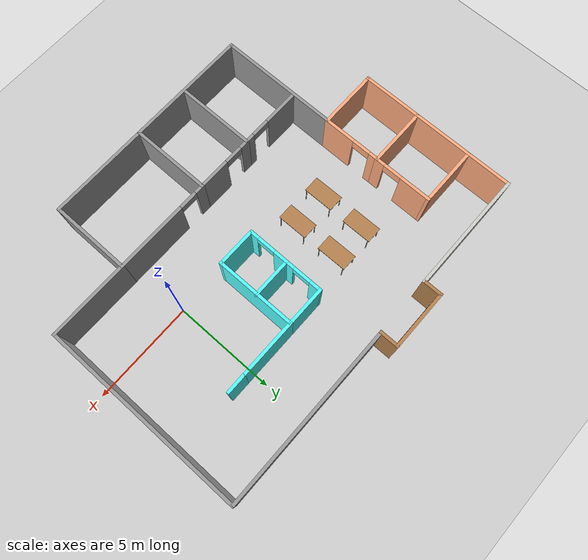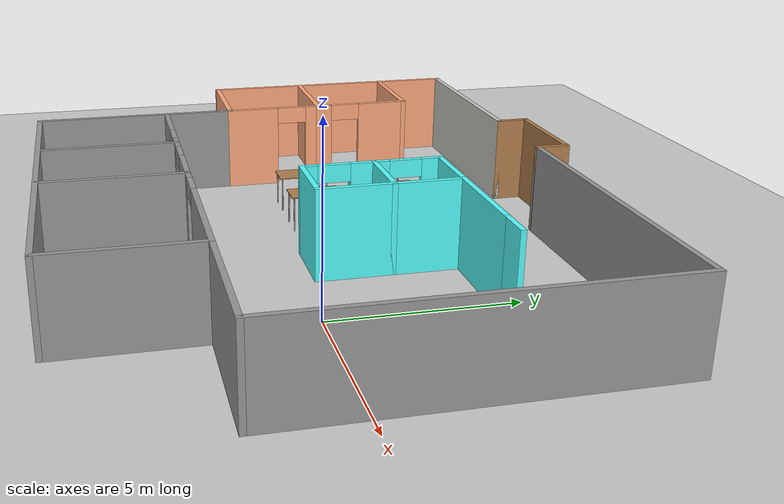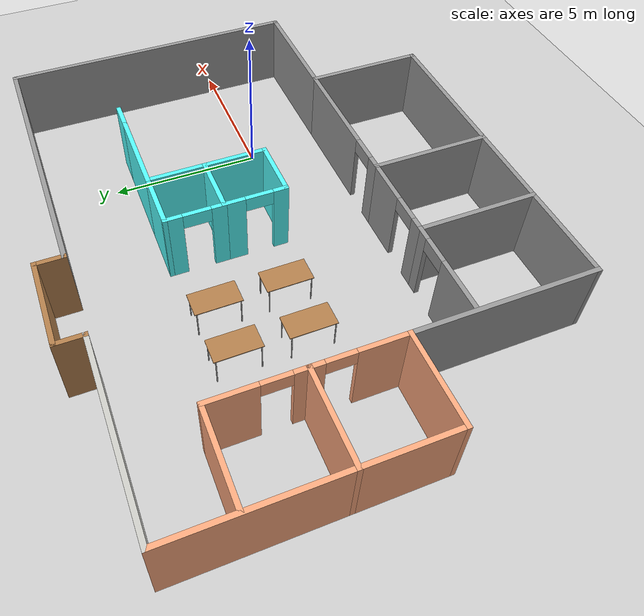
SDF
<sdf version="1.6">
 <world name="default">
  <model name="ground_plane">
   <static>1</static>
   <link name="link">
    <collision name="collision">
     <geometry><plane><normal>0 0 1</normal><size>100 100</size></plane></geometry>
     <surface>
      <contact><collide_bitmask>65535</collide_bitmask></contact>
      <friction><ode><mu>100</mu><mu2>50</mu2></ode></friction>
     </surface>
    </collision>
    <visual name="visual">
     <cast_shadows>0</cast_shadows>
     <geometry><plane><normal>0 0 1</normal><size>100 100</size></plane></geometry>
     <material>
      <script><uri>file://media/materials/scripts/gazebo.material</uri><name>Gazebo/Grey</name></script>
     </material>
    </visual>
   </link>
  </model>
  <model name="building">
   <pose>-4.41923 0.8356 0 0 -0 0</pose>
   <link name="Wall_10">
    <collision name="Wall_10_Collision">
     <geometry><box><size>11 0.15 2.5</size></box></geometry>
     <pose>0 0 1.25 0 -0 0</pose>
    </collision>
    <visual name="Wall_10_Visual">
     <pose>0 0 1.25 0 -0 0</pose>
     <geometry><box><size>11 0.15 2.5</size></box></geometry>
     <material>
      <script><uri>file://media/materials/scripts/gazebo.material</uri><name>Gazebo/Grey</name></script>
      <ambient>1 1 1 1</ambient>
     </material>
     <meta><layer>0</layer></meta>
    </visual>
    <pose>-0.5 -7.275 0 0 -0 3.14159</pose>
   </link>
   <link name="Wall_11">
    <collision name="Wall_11_Collision">
     <geometry><box><size>6 0.15 2.5</size></box></geometry>
     <pose>0 0 1.25 0 -0 0</pose>
    </collision>
    <visual name="Wall_11_Visual">
     <pose>0 0 1.25 0 -0 0</pose>
     <geometry><box><size>6 0.15 2.5</size></box></geometry>
     <material>
      <script><uri>file://media/materials/scripts/gazebo.material</uri><name>Gazebo/Grey</name></script>
      <ambient>1 1 1 1</ambient>
     </material>
     <meta><layer>0</layer></meta>
    </visual>
    <pose>-5.925 -4.35 0 0 -0 1.5708</pose>
   </link>
   <link name="Wall_12">
    <collision name="Wall_12_Collision">
     <geometry><box><size>3 0.15 2.5</size></box></geometry>
     <pose>0 0 1.25 0 -0 0</pose>
    </collision>
    <visual name="Wall_12_Visual">
     <pose>0 0 1.25 0 -0 0</pose>
     <geometry><box><size>3 0.15 2.5</size></box></geometry>
     <material>
      <script><uri>file://media/materials/scripts/gazebo.material</uri><name>Gazebo/Grey</name></script>
      <ambient>1 0.666667 0.498039 1</ambient>
     </material>
     <meta><layer>0</layer></meta>
    </visual>
    <pose>-7.35 -1.425 0 0 -0 3.14159</pose>
   </link>
   <link name="Wall_13">
    <collision name="Wall_13_Collision">
     <geometry><box><size>8 0.15 2.5</size></box></geometry>
     <pose>0 0 1.25 0 -0 0</pose>
    </collision>
    <visual name="Wall_13_Visual">
     <pose>0 0 1.25 0 -0 0</pose>
     <geometry><box><size>8 0.15 2.5</size></box></geometry>
     <material>
      <script><uri>file://media/materials/scripts/gazebo.material</uri><name>Gazebo/Grey</name></script>
      <ambient>1 0.666667 0.498039 1</ambient>
     </material>
     <meta><layer>0</layer></meta>
    </visual>
    <pose>-8.775 2.5 0 0 -0 1.5708</pose>
   </link>
   <link name="Wall_15">
    <pose>-5.925 0 0 0 -0 1.5708</pose>
    <visual name="Wall_15_Visual_0">
     <pose>-0.699732 0 1.25 0 -0 0</pose>
     <geometry><box><size>1.60054 0.15 2.5</size></box></geometry>
     <material>
      <script><uri>file://media/materials/scripts/gazebo.material</uri><name>Gazebo/Grey</name></script>
      <ambient>1 0.666667 0.498039 1</ambient>
     </material>
     <meta><layer>0</layer></meta>
    </visual>
    <collision name="Wall_15_Collision_0">
     <geometry><box><size>1.60054 0.15 2.5</size></box></geometry>
     <pose>-0.699732 0 1.25 0 -0 0</pose>
    </collision>
    <visual name="Wall_15_Visual_1">
     <pose>1.25027 0 1.25 0 -0 0</pose>
     <geometry><box><size>0.499463 0.15 2.5</size></box></geometry>
     <material>
      <script><uri>file://media/materials/scripts/gazebo.material</uri><name>Gazebo/Grey</name></script>
      <ambient>1 0.666667 0.498039 1</ambient>
     </material>
     <meta><layer>0</layer></meta>
    </visual>
    <collision name="Wall_15_Collision_1">
     <geometry><box><size>0.499463 0.15 2.5</size></box></geometry>
     <pose>1.25027 0 1.25 0 -0 0</pose>
    </collision>
    <visual name="Wall_15_Visual_2">
     <pose>0.550537 0 2.25 0 -0 0</pose>
     <geometry><box><size>0.9 0.15 0.5</size></box></geometry>
     <material>
      <script><uri>file://media/materials/scripts/gazebo.material</uri><name>Gazebo/Grey</name></script>
      <ambient>1 0.666667 0.498039 1</ambient>
     </material>
     <meta><layer>0</layer></meta>
    </visual>
    <collision name="Wall_15_Collision_2">
     <geometry><box><size>0.9 0.15 0.5</size></box></geometry>
     <pose>0.550537 0 2.25 0 -0 0</pose>
    </collision>
   </link>
   <link name="Wall_16">
    <collision name="Wall_16_Collision">
     <geometry><box><size>3 0.15 2.5</size></box></geometry>
     <pose>0 0 1.25 0 -0 0</pose>
    </collision>
    <visual name="Wall_16_Visual">
     <pose>0 0 1.25 0 -0 0</pose>
     <geometry><box><size>3 0.15 2.5</size></box></geometry>
     <material>
      <script><uri>file://media/materials/scripts/gazebo.material</uri><name>Gazebo/Grey</name></script>
      <ambient>1 0.666667 0.498039 1</ambient>
     </material>
     <meta><layer>0</layer></meta>
    </visual>
    <pose>-7.35 1.425 0 0 -0 3.14159</pose>
   </link>
   <link name="Wall_18">
    <pose>-5.925 2.85 0 0 -0 1.5708</pose>
    <visual name="Wall_18_Visual_0">
     <pose>-1.24482 0 1.25 0 -0 0</pose>
     <geometry><box><size>0.510355 0.15 2.5</size></box></geometry>
     <material>
      <script><uri>file://media/materials/scripts/gazebo.material</uri><name>Gazebo/Grey</name></script>
      <ambient>1 0.666667 0.498039 1</ambient>
     </material>
     <meta><layer>0</layer></meta>
    </visual>
    <collision name="Wall_18_Collision_0">
     <geometry><box><size>0.510355 0.15 2.5</size></box></geometry>
     <pose>-1.24482 0 1.25 0 -0 0</pose>
    </collision>
    <visual name="Wall_18_Visual_1">
     <pose>0.705177 0 1.25 0 -0 0</pose>
     <geometry><box><size>1.58964 0.15 2.5</size></box></geometry>
     <material>
      <script><uri>file://media/materials/scripts/gazebo.material</uri><name>Gazebo/Grey</name></script>
      <ambient>1 0.666667 0.498039 1</ambient>
     </material>
     <meta><layer>0</layer></meta>
    </visual>
    <collision name="Wall_18_Collision_1">
     <geometry><box><size>1.58964 0.15 2.5</size></box></geometry>
     <pose>0.705177 0 1.25 0 -0 0</pose>
    </collision>
    <visual name="Wall_18_Visual_2">
     <pose>-0.539645 0 2.25 0 -0 0</pose>
     <geometry><box><size>0.9 0.15 0.5</size></box></geometry>
     <material>
      <script><uri>file://media/materials/scripts/gazebo.material</uri><name>Gazebo/Grey</name></script>
      <ambient>1 0.666667 0.498039 1</ambient>
     </material>
     <meta><layer>0</layer></meta>
    </visual>
    <collision name="Wall_18_Collision_2">
     <geometry><box><size>0.9 0.15 0.5</size></box></geometry>
     <pose>-0.539645 0 2.25 0 -0 0</pose>
    </collision>
   </link>
   <link name="Wall_19">
    <collision name="Wall_19_Collision">
     <geometry><box><size>3 0.15 2.5</size></box></geometry>
     <pose>0 0 1.25 0 -0 0</pose>
    </collision>
    <visual name="Wall_19_Visual">
     <pose>0 0 1.25 0 -0 0</pose>
     <geometry><box><size>3 0.15 2.5</size></box></geometry>
     <material>
      <script><uri>file://media/materials/scripts/gazebo.material</uri><name>Gazebo/Grey</name></script>
      <ambient>1 0.666667 0.498039 1</ambient>
     </material>
     <meta><layer>0</layer></meta>
    </visual>
    <pose>-7.35 4.275 0 0 -0 3.14159</pose>
   </link>
   <link name="Wall_2">
    <collision name="Wall_2_Collision">
     <geometry><box><size>6 0.15 2.5</size></box></geometry>
     <pose>0 0 1.25 0 -0 0</pose>
    </collision>
    <visual name="Wall_2_Visual">
     <pose>0 0 1.25 0 -0 0</pose>
     <geometry><box><size>6 0.15 2.5</size></box></geometry>
     <material>
      <script><uri>file://media/materials/scripts/gazebo.material</uri><name>Gazebo/CeilingTiled</name></script>
      <ambient>1 1 1 1</ambient>
     </material>
     <meta><layer>0</layer></meta>
    </visual>
    <pose>-5.85 6.425 0 0 -0 0</pose>
   </link>
   <link name="Wall_21">
    <pose>2.5 -3.425 0 0 -0 3.14159</pose>
    <visual name="Wall_21_Visual_0">
     <pose>-0.701525 0 1.25 0 -0 0</pose>
     <geometry><box><size>3.59695 0.15 2.5</size></box></geometry>
     <material>
      <script><uri>file://media/materials/scripts/gazebo.material</uri><name>Gazebo/Grey</name></script>
      <ambient>1 1 1 1</ambient>
     </material>
     <meta><layer>0</layer></meta>
    </visual>
    <collision name="Wall_21_Collision_0">
     <geometry><box><size>3.59695 0.15 2.5</size></box></geometry>
     <pose>-0.701525 0 1.25 0 -0 0</pose>
    </collision>
    <visual name="Wall_21_Visual_1">
     <pose>2.24848 0 1.25 0 -0 0</pose>
     <geometry><box><size>0.50305 0.15 2.5</size></box></geometry>
     <material>
      <script><uri>file://media/materials/scripts/gazebo.material</uri><name>Gazebo/Grey</name></script>
      <ambient>1 1 1 1</ambient>
     </material>
     <meta><layer>0</layer></meta>
    </visual>
    <collision name="Wall_21_Collision_1">
     <geometry><box><size>0.50305 0.15 2.5</size></box></geometry>
     <pose>2.24848 0 1.25 0 -0 0</pose>
    </collision>
    <visual name="Wall_21_Visual_2">
     <pose>1.54695 0 2.25 0 -0 0</pose>
     <geometry><box><size>0.9 0.15 0.5</size></box></geometry>
     <material>
      <script><uri>file://media/materials/scripts/gazebo.material</uri><name>Gazebo/Grey</name></script>
      <ambient>1 1 1 1</ambient>
     </material>
     <meta><layer>0</layer></meta>
    </visual>
    <collision name="Wall_21_Collision_2">
     <geometry><box><size>0.9 0.15 0.5</size></box></geometry>
     <pose>1.54695 0 2.25 0 -0 0</pose>
    </collision>
   </link>
   <link name="Wall_22">
    <collision name="Wall_22_Collision">
     <geometry><box><size>4 0.15 2.5</size></box></geometry>
     <pose>0 0 1.25 0 -0 0</pose>
    </collision>
    <visual name="Wall_22_Visual">
     <pose>0 0 1.25 0 -0 0</pose>
     <geometry><box><size>4 0.15 2.5</size></box></geometry>
     <material>
      <script><uri>file://media/materials/scripts/gazebo.material</uri><name>Gazebo/Grey</name></script>
      <ambient>1 1 1 1</ambient>
     </material>
     <meta><layer>0</layer></meta>
    </visual>
    <pose>0.075 -5.35 0 0 0 -1.5708</pose>
   </link>
   <link name="Wall_24">
    <pose>-1.35 -3.425 0 0 -0 3.14159</pose>
    <visual name="Wall_24_Visual_0">
     <pose>-0.700436 0 1.25 0 -0 0</pose>
     <geometry><box><size>1.59913 0.15 2.5</size></box></geometry>
     <material>
      <script><uri>file://media/materials/scripts/gazebo.material</uri><name>Gazebo/Grey</name></script>
      <ambient>1 1 1 1</ambient>
     </material>
     <meta><layer>0</layer></meta>
    </visual>
    <collision name="Wall_24_Collision_0">
     <geometry><box><size>1.59913 0.15 2.5</size></box></geometry>
     <pose>-0.700436 0 1.25 0 -0 0</pose>
    </collision>
    <visual name="Wall_24_Visual_1">
     <pose>1.24956 0 1.25 0 -0 0</pose>
     <geometry><box><size>0.500873 0.15 2.5</size></box></geometry>
     <material>
      <script><uri>file://media/materials/scripts/gazebo.material</uri><name>Gazebo/Grey</name></script>
      <ambient>1 1 1 1</ambient>
     </material>
     <meta><layer>0</layer></meta>
    </visual>
    <collision name="Wall_24_Collision_1">
     <geometry><box><size>0.500873 0.15 2.5</size></box></geometry>
     <pose>1.24956 0 1.25 0 -0 0</pose>
    </collision>
    <visual name="Wall_24_Visual_2">
     <pose>0.549127 0 2.25 0 -0 0</pose>
     <geometry><box><size>0.9 0.15 0.5</size></box></geometry>
     <material>
      <script><uri>file://media/materials/scripts/gazebo.material</uri><name>Gazebo/Grey</name></script>
      <ambient>1 1 1 1</ambient>
     </material>
     <meta><layer>0</layer></meta>
    </visual>
    <collision name="Wall_24_Collision_2">
     <geometry><box><size>0.9 0.15 0.5</size></box></geometry>
     <pose>0.549127 0 2.25 0 -0 0</pose>
    </collision>
   </link>
   <link name="Wall_25">
    <collision name="Wall_25_Collision">
     <geometry><box><size>4 0.15 2.5</size></box></geometry>
     <pose>0 0 1.25 0 -0 0</pose>
    </collision>
    <visual name="Wall_25_Visual">
     <pose>0 0 1.25 0 -0 0</pose>
     <geometry><box><size>4 0.15 2.5</size></box></geometry>
     <material>
      <script><uri>file://media/materials/scripts/gazebo.material</uri><name>Gazebo/Grey</name></script>
      <ambient>1 1 1 1</ambient>
     </material>
     <meta><layer>0</layer></meta>
    </visual>
    <pose>-2.775 -5.35 0 0 0 -1.5708</pose>
   </link>
   <link name="Wall_27">
    <pose>-4.325 -3.425 0 0 -0 3.14159</pose>
    <visual name="Wall_27_Visual_0">
     <pose>-1.37053 0 1.25 0 -0 0</pose>
     <geometry><box><size>0.508945 0.15 2.5</size></box></geometry>
     <material>
      <script><uri>file://media/materials/scripts/gazebo.material</uri><name>Gazebo/Grey</name></script>
      <ambient>1 1 1 1</ambient>
     </material>
     <meta><layer>0</layer></meta>
    </visual>
    <collision name="Wall_27_Collision_0">
     <geometry><box><size>0.508945 0.15 2.5</size></box></geometry>
     <pose>-1.37053 0 1.25 0 -0 0</pose>
    </collision>
    <visual name="Wall_27_Visual_1">
     <pose>0.704472 0 1.25 0 -0 0</pose>
     <geometry><box><size>1.84106 0.15 2.5</size></box></geometry>
     <material>
      <script><uri>file://media/materials/scripts/gazebo.material</uri><name>Gazebo/Grey</name></script>
      <ambient>1 1 1 1</ambient>
     </material>
     <meta><layer>0</layer></meta>
    </visual>
    <collision name="Wall_27_Collision_1">
     <geometry><box><size>1.84106 0.15 2.5</size></box></geometry>
     <pose>0.704472 0 1.25 0 -0 0</pose>
    </collision>
    <visual name="Wall_27_Visual_2">
     <pose>-0.666055 0 2.25 0 -0 0</pose>
     <geometry><box><size>0.9 0.15 0.5</size></box></geometry>
     <material>
      <script><uri>file://media/materials/scripts/gazebo.material</uri><name>Gazebo/Grey</name></script>
      <ambient>1 1 1 1</ambient>
     </material>
     <meta><layer>0</layer></meta>
    </visual>
    <collision name="Wall_27_Collision_2">
     <geometry><box><size>0.9 0.15 0.5</size></box></geometry>
     <pose>-0.666055 0 2.25 0 -0 0</pose>
    </collision>
   </link>
   <link name="Wall_3">
    <collision name="Wall_3_Collision">
     <geometry><box><size>1 0.15 2.5</size></box></geometry>
     <pose>0 0 1.25 0 -0 0</pose>
    </collision>
    <visual name="Wall_3_Visual">
     <pose>0 0 1.25 0 -0 0</pose>
     <geometry><box><size>1 0.15 2.5</size></box></geometry>
     <material>
      <script><uri>file://media/materials/scripts/gazebo.material</uri><name>Gazebo/Wood</name></script>
      <ambient>1 1 1 1</ambient>
     </material>
     <meta><layer>0</layer></meta>
    </visual>
    <pose>-2.925 6.85 0 0 -0 1.5708</pose>
   </link>
   <link name="Wall_30">
    <collision name="Wall_30_Collision">
     <geometry><box><size>1 0.15 2.5</size></box></geometry>
     <pose>0 0 1.25 0 -0 0</pose>
    </collision>
    <visual name="Wall_30_Visual">
     <pose>0 0 1.25 0 -0 0</pose>
     <geometry><box><size>1 0.15 2.5</size></box></geometry>
     <material>
      <script><uri>file://media/materials/scripts/gazebo.material</uri><name>Gazebo/Grey</name></script>
      <ambient>0.333333 1 1 1</ambient>
     </material>
     <meta><layer>0</layer></meta>
    </visual>
    <pose>5.35 3.425 0 0 -0 0</pose>
   </link>
   <link name="Wall_32">
    <collision name="Wall_32_Collision">
     <geometry><box><size>3 0.15 2.5</size></box></geometry>
     <pose>0 0 1.25 0 -0 0</pose>
    </collision>
    <visual name="Wall_32_Visual">
     <pose>0 0 1.25 0 -0 0</pose>
     <geometry><box><size>3 0.15 2.5</size></box></geometry>
     <material>
      <script><uri>file://media/materials/scripts/gazebo.material</uri><name>Gazebo/Grey</name></script>
      <ambient>0.333333 1 1 1</ambient>
     </material>
     <meta><layer>0</layer></meta>
    </visual>
    <pose>3.5 3.425 0 0 -0 3.14159</pose>
   </link>
   <link name="Wall_34">
    <collision name="Wall_34_Collision">
     <geometry><box><size>4 0.15 2.5</size></box></geometry>
     <pose>0 0 1.25 0 -0 0</pose>
    </collision>
    <visual name="Wall_34_Visual">
     <pose>0 0 1.25 0 -0 0</pose>
     <geometry><box><size>4 0.15 2.5</size></box></geometry>
     <material>
      <script><uri>file://media/materials/scripts/gazebo.material</uri><name>Gazebo/Grey</name></script>
      <ambient>0.333333 1 1 1</ambient>
     </material>
     <meta><layer>0</layer></meta>
    </visual>
    <pose>2.075 1.5 0 0 0 -1.5708</pose>
   </link>
   <link name="Wall_35">
    <collision name="Wall_35_Collision">
     <geometry><box><size>2 0.15 2.5</size></box></geometry>
     <pose>0 0 1.25 0 -0 0</pose>
    </collision>
    <visual name="Wall_35_Visual">
     <pose>0 0 1.25 0 -0 0</pose>
     <geometry><box><size>2 0.15 2.5</size></box></geometry>
     <material>
      <script><uri>file://media/materials/scripts/gazebo.material</uri><name>Gazebo/Grey</name></script>
      <ambient>0.333333 1 1 1</ambient>
     </material>
     <meta><layer>0</layer></meta>
    </visual>
    <pose>1.15 -0.425 0 0 -0 3.14159</pose>
   </link>
   <link name="Wall_37">
    <collision name="Wall_37_Collision">
     <geometry><box><size>2 0.15 2.5</size></box></geometry>
     <pose>0 0 1.25 0 -0 0</pose>
    </collision>
    <visual name="Wall_37_Visual">
     <pose>0 0 1.25 0 -0 0</pose>
     <geometry><box><size>2 0.15 2.5</size></box></geometry>
     <material>
      <script><uri>file://media/materials/scripts/gazebo.material</uri><name>Gazebo/Grey</name></script>
      <ambient>0.333333 1 1 1</ambient>
     </material>
     <meta><layer>0</layer></meta>
    </visual>
    <pose>1.15 3.425 0 0 -0 0</pose>
   </link>
   <link name="Wall_39">
    <pose>0.225 2.5 0 0 0 -1.5708</pose>
    <visual name="Wall_39_Visual_0">
     <pose>-0.69061 0 1.25 0 -0 0</pose>
     <geometry><box><size>0.61878 0.15 2.5</size></box></geometry>
     <material>
      <script><uri>file://media/materials/scripts/gazebo.material</uri><name>Gazebo/Grey</name></script>
      <ambient>0.333333 1 1 1</ambient>
     </material>
     <meta><layer>0</layer></meta>
    </visual>
    <collision name="Wall_39_Collision_0">
     <geometry><box><size>0.61878 0.15 2.5</size></box></geometry>
     <pose>-0.69061 0 1.25 0 -0 0</pose>
    </collision>
    <visual name="Wall_39_Visual_1">
     <pose>0.75939 0 1.25 0 -0 0</pose>
     <geometry><box><size>0.48122 0.15 2.5</size></box></geometry>
     <material>
      <script><uri>file://media/materials/scripts/gazebo.material</uri><name>Gazebo/Grey</name></script>
      <ambient>0.333333 1 1 1</ambient>
     </material>
     <meta><layer>0</layer></meta>
    </visual>
    <collision name="Wall_39_Collision_1">
     <geometry><box><size>0.48122 0.15 2.5</size></box></geometry>
     <pose>0.75939 0 1.25 0 -0 0</pose>
    </collision>
    <visual name="Wall_39_Visual_2">
     <pose>0.06878 0 2.25 0 -0 0</pose>
     <geometry><box><size>0.9 0.15 0.5</size></box></geometry>
     <material>
      <script><uri>file://media/materials/scripts/gazebo.material</uri><name>Gazebo/Grey</name></script>
      <ambient>0.333333 1 1 1</ambient>
     </material>
     <meta><layer>0</layer></meta>
    </visual>
    <collision name="Wall_39_Collision_2">
     <geometry><box><size>0.9 0.15 0.5</size></box></geometry>
     <pose>0.06878 0 2.25 0 -0 0</pose>
    </collision>
   </link>
   <link name="Wall_4">
    <collision name="Wall_4_Collision">
     <geometry><box><size>3 0.15 2.5</size></box></geometry>
     <pose>0 0 1.25 0 -0 0</pose>
    </collision>
    <visual name="Wall_4_Visual">
     <pose>0 0 1.25 0 -0 0</pose>
     <geometry><box><size>3 0.15 2.5</size></box></geometry>
     <material>
      <script><uri>file://media/materials/scripts/gazebo.material</uri><name>Gazebo/Wood</name></script>
      <ambient>1 1 1 1</ambient>
     </material>
     <meta><layer>0</layer></meta>
    </visual>
    <pose>-1.5 7.275 0 0 -0 0</pose>
   </link>
   <link name="Wall_40">
    <collision name="Wall_40_Collision">
     <geometry><box><size>2 0.15 2.5</size></box></geometry>
     <pose>0 0 1.25 0 -0 0</pose>
    </collision>
    <visual name="Wall_40_Visual">
     <pose>0 0 1.25 0 -0 0</pose>
     <geometry><box><size>2 0.15 2.5</size></box></geometry>
     <material>
      <script><uri>file://media/materials/scripts/gazebo.material</uri><name>Gazebo/Grey</name></script>
      <ambient>0.333333 1 1 1</ambient>
     </material>
     <meta><layer>0</layer></meta>
    </visual>
    <pose>1.15 1.575 0 0 -0 0</pose>
   </link>
   <link name="Wall_42">
    <pose>0.225 0.575 0 0 0 -1.5708</pose>
    <visual name="Wall_42_Visual_0">
     <pose>-0.699448 0 1.25 0 -0 0</pose>
     <geometry><box><size>0.751103 0.15 2.5</size></box></geometry>
     <material>
      <script><uri>file://media/materials/scripts/gazebo.material</uri><name>Gazebo/Grey</name></script>
      <ambient>0.333333 1 1 1</ambient>
     </material>
     <meta><layer>0</layer></meta>
    </visual>
    <collision name="Wall_42_Collision_0">
     <geometry><box><size>0.751103 0.15 2.5</size></box></geometry>
     <pose>-0.699448 0 1.25 0 -0 0</pose>
    </collision>
    <visual name="Wall_42_Visual_1">
     <pose>0.825552 0 1.25 0 -0 0</pose>
     <geometry><box><size>0.498897 0.15 2.5</size></box></geometry>
     <material>
      <script><uri>file://media/materials/scripts/gazebo.material</uri><name>Gazebo/Grey</name></script>
      <ambient>0.333333 1 1 1</ambient>
     </material>
     <meta><layer>0</layer></meta>
    </visual>
    <collision name="Wall_42_Collision_1">
     <geometry><box><size>0.498897 0.15 2.5</size></box></geometry>
     <pose>0.825552 0 1.25 0 -0 0</pose>
    </collision>
    <visual name="Wall_42_Visual_2">
     <pose>0.126103 0 2.25 0 -0 0</pose>
     <geometry><box><size>0.9 0.15 0.5</size></box></geometry>
     <material>
      <script><uri>file://media/materials/scripts/gazebo.material</uri><name>Gazebo/Grey</name></script>
      <ambient>0.333333 1 1 1</ambient>
     </material>
     <meta><layer>0</layer></meta>
    </visual>
    <collision name="Wall_42_Collision_2">
     <geometry><box><size>0.9 0.15 0.5</size></box></geometry>
     <pose>0.126103 0 2.25 0 -0 0</pose>
    </collision>
   </link>
   <link name="Wall_5">
    <collision name="Wall_5_Collision">
     <geometry><box><size>1 0.15 2.5</size></box></geometry>
     <pose>0 0 1.25 0 -0 0</pose>
    </collision>
    <visual name="Wall_5_Visual">
     <pose>0 0 1.25 0 -0 0</pose>
     <geometry><box><size>1 0.15 2.5</size></box></geometry>
     <material>
      <script><uri>file://media/materials/scripts/gazebo.material</uri><name>Gazebo/Wood</name></script>
      <ambient>1 1 1 1</ambient>
     </material>
     <meta><layer>0</layer></meta>
    </visual>
    <pose>-0.075 6.85 0 0 0 -1.5708</pose>
   </link>
   <link name="Wall_6">
    <collision name="Wall_6_Collision">
     <geometry><box><size>9 0.15 2.5</size></box></geometry>
     <pose>0 0 1.25 0 -0 0</pose>
    </collision>
    <visual name="Wall_6_Visual">
     <pose>0 0 1.25 0 -0 0</pose>
     <geometry><box><size>9 0.15 2.5</size></box></geometry>
     <material>
      <script><uri>file://media/materials/scripts/gazebo.material</uri><name>Gazebo/Grey</name></script>
      <ambient>1 1 1 1</ambient>
     </material>
     <meta><layer>0</layer></meta>
    </visual>
    <pose>4.35 6.425 0 0 -0 0</pose>
   </link>
   <link name="Wall_7">
    <collision name="Wall_7_Collision">
     <geometry><box><size>10 0.15 2.5</size></box></geometry>
     <pose>0 0 1.25 0 -0 0</pose>
    </collision>
    <visual name="Wall_7_Visual">
     <pose>0 0 1.25 0 -0 0</pose>
     <geometry><box><size>10 0.15 2.5</size></box></geometry>
     <material>
      <script><uri>file://media/materials/scripts/gazebo.material</uri><name>Gazebo/Grey</name></script>
      <ambient>1 1 1 1</ambient>
     </material>
     <meta><layer>0</layer></meta>
    </visual>
    <pose>8.775 1.5 0 0 0 -1.5708</pose>
   </link>
   <link name="Wall_8">
    <collision name="Wall_8_Collision">
     <geometry><box><size>4 0.15 2.5</size></box></geometry>
     <pose>0 0 1.25 0 -0 0</pose>
    </collision>
    <visual name="Wall_8_Visual">
     <pose>0 0 1.25 0 -0 0</pose>
     <geometry><box><size>4 0.15 2.5</size></box></geometry>
     <material>
      <script><uri>file://media/materials/scripts/gazebo.material</uri><name>Gazebo/Grey</name></script>
      <ambient>1 1 1 1</ambient>
     </material>
     <meta><layer>0</layer></meta>
    </visual>
    <pose>6.85 -3.425 0 0 -0 3.14159</pose>
   </link>
   <link name="Wall_9">
    <collision name="Wall_9_Collision">
     <geometry><box><size>4 0.15 2.5</size></box></geometry>
     <pose>0 0 1.25 0 -0 0</pose>
    </collision>
    <visual name="Wall_9_Visual">
     <pose>0 0 1.25 0 -0 0</pose>
     <geometry><box><size>4 0.15 2.5</size></box></geometry>
     <material>
      <script><uri>file://media/materials/scripts/gazebo.material</uri><name>Gazebo/Grey</name></script>
      <ambient>1 1 1 1</ambient>
     </material>
     <meta><layer>0</layer></meta>
    </visual>
    <pose>4.925 -5.35 0 0 0 -1.5708</pose>
   </link>
   <static>1</static>
  </model>
  <model name="table">
   <static>1</static>
   <link name="link">
    <collision name="surface">
     <pose>0 0 1 0 -0 0</pose>
     <geometry><box><size>1.5 0.8 0.03</size></box></geometry>
     <surface><friction><ode><mu>0.6</mu><mu2>0.6</mu2></ode></friction></surface>
    </collision>
    <visual name="visual1">
     <pose>0 0 1 0 -0 0</pose>
     <geometry><box><size>1.5 0.8 0.03</size></box></geometry>
     <material>
      <script><uri>file://media/materials/scripts/gazebo.material</uri><name>Gazebo/Wood</name></script>
     </material>
    </visual>
    <collision name="front_left_leg">
     <pose>0.68 0.38 0.5 0 -0 0</pose>
     <geometry><cylinder><radius>0.02</radius><length>1</length></cylinder></geometry>
    </collision>
    <visual name="front_left_leg">
     <pose>0.68 0.38 0.5 0 -0 0</pose>
     <geometry><cylinder><radius>0.02</radius><length>1</length></cylinder></geometry>
     <material>
      <script><uri>file://media/materials/scripts/gazebo.material</uri><name>Gazebo/Grey</name></script>
     </material>
    </visual>
    <collision name="front_right_leg">
     <pose>0.68 -0.38 0.5 0 -0 0</pose>
     <geometry><cylinder><radius>0.02</radius><length>1</length></cylinder></geometry>
    </collision>
    <visual name="front_right_leg">
     <pose>0.68 -0.38 0.5 0 -0 0</pose>
     <geometry><cylinder><radius>0.02</radius><length>1</length></cylinder></geometry>
     <material>
      <script><uri>file://media/materials/scripts/gazebo.material</uri><name>Gazebo/Grey</name></script>
     </material>
    </visual>
    <collision name="back_right_leg">
     <pose>-0.68 -0.38 0.5 0 -0 0</pose>
     <geometry><cylinder><radius>0.02</radius><length>1</length></cylinder></geometry>
    </collision>
    <visual name="back_right_leg">
     <pose>-0.68 -0.38 0.5 0 -0 0</pose>
     <geometry><cylinder><radius>0.02</radius><length>1</length></cylinder></geometry>
     <material>
      <script><uri>file://media/materials/scripts/gazebo.material</uri><name>Gazebo/Grey</name></script>
     </material>
    </visual>
    <collision name="back_left_leg">
     <pose>-0.68 0.38 0.5 0 -0 0</pose>
     <geometry><cylinder><radius>0.02</radius><length>1</length></cylinder></geometry>
    </collision>
    <visual name="back_left_leg">
     <pose>-0.68 0.38 0.5 0 -0 0</pose>
     <geometry><cylinder><radius>0.02</radius><length>1</length></cylinder></geometry>
     <material>
      <script><uri>file://media/materials/scripts/gazebo.material</uri><name>Gazebo/Grey</name></script>
     </material>
    </visual>
   </link>
   <pose>-6.31911 3.49163 0 0 0 -1.56537</pose>
  </model>
  <model name="table_clone">
   <static>1</static>
   <link name="link">
    <collision name="surface">
     <pose>0 0 1 0 -0 0</pose>
     <geometry><box><size>1.5 0.8 0.03</size></box></geometry>
     <surface><friction><ode><mu>0.6</mu><mu2>0.6</mu2></ode></friction></surface>
    </collision>
    <visual name="visual1">
     <pose>0 0 1 0 -0 0</pose>
     <geometry><box><size>1.5 0.8 0.03</size></box></geometry>
     <material>
      <script><uri>file://media/materials/scripts/gazebo.material</uri><name>Gazebo/Wood</name></script>
     </material>
    </visual>
    <collision name="front_left_leg">
     <pose>0.68 0.38 0.5 0 -0 0</pose>
     <geometry><cylinder><radius>0.02</radius><length>1</length></cylinder></geometry>
    </collision>
    <visual name="front_left_leg">
     <pose>0.68 0.38 0.5 0 -0 0</pose>
     <geometry><cylinder><radius>0.02</radius><length>1</length></cylinder></geometry>
     <material>
      <script><uri>file://media/materials/scripts/gazebo.material</uri><name>Gazebo/Grey</name></script>
     </material>
    </visual>
    <collision name="front_right_leg">
     <pose>0.68 -0.38 0.5 0 -0 0</pose>
     <geometry><cylinder><radius>0.02</radius><length>1</length></cylinder></geometry>
    </collision>
    <visual name="front_right_leg">
     <pose>0.68 -0.38 0.5 0 -0 0</pose>
     <geometry><cylinder><radius>0.02</radius><length>1</length></cylinder></geometry>
     <material>
      <script><uri>file://media/materials/scripts/gazebo.material</uri><name>Gazebo/Grey</name></script>
     </material>
    </visual>
    <collision name="back_right_leg">
     <pose>-0.68 -0.38 0.5 0 -0 0</pose>
     <geometry><cylinder><radius>0.02</radius><length>1</length></cylinder></geometry>
    </collision>
    <visual name="back_right_leg">
     <pose>-0.68 -0.38 0.5 0 -0 0</pose>
     <geometry><cylinder><radius>0.02</radius><length>1</length></cylinder></geometry>
     <material>
      <script><uri>file://media/materials/scripts/gazebo.material</uri><name>Gazebo/Grey</name></script>
     </material>
    </visual>
    <collision name="back_left_leg">
     <pose>-0.68 0.38 0.5 0 -0 0</pose>
     <geometry><cylinder><radius>0.02</radius><length>1</length></cylinder></geometry>
    </collision>
    <visual name="back_left_leg">
     <pose>-0.68 0.38 0.5 0 -0 0</pose>
     <geometry><cylinder><radius>0.02</radius><length>1</length></cylinder></geometry>
     <material>
      <script><uri>file://media/materials/scripts/gazebo.material</uri><name>Gazebo/Grey</name></script>
     </material>
    </visual>
   </link>
   <pose>-6.29166 1.23928 0 0 0 -1.56537</pose>
  </model>
  <model name="table_clone_0">
   <static>1</static>
   <link name="link">
    <collision name="surface">
     <pose>0 0 1 0 -0 0</pose>
     <geometry><box><size>1.5 0.8 0.03</size></box></geometry>
     <surface><friction><ode><mu>0.6</mu><mu2>0.6</mu2></ode></friction></surface>
    </collision>
    <visual name="visual1">
     <pose>0 0 1 0 -0 0</pose>
     <geometry><box><size>1.5 0.8 0.03</size></box></geometry>
     <material>
      <script><uri>file://media/materials/scripts/gazebo.material</uri><name>Gazebo/Wood</name></script>
     </material>
    </visual>
    <collision name="front_left_leg">
     <pose>0.68 0.38 0.5 0 -0 0</pose>
     <geometry><cylinder><radius>0.02</radius><length>1</length></cylinder></geometry>
    </collision>
    <visual name="front_left_leg">
     <pose>0.68 0.38 0.5 0 -0 0</pose>
     <geometry><cylinder><radius>0.02</radius><length>1</length></cylinder></geometry>
     <material>
      <script><uri>file://media/materials/scripts/gazebo.material</uri><name>Gazebo/Grey</name></script>
     </material>
    </visual>
    <collision name="front_right_leg">
     <pose>0.68 -0.38 0.5 0 -0 0</pose>
     <geometry><cylinder><radius>0.02</radius><length>1</length></cylinder></geometry>
    </collision>
    <visual name="front_right_leg">
     <pose>0.68 -0.38 0.5 0 -0 0</pose>
     <geometry><cylinder><radius>0.02</radius><length>1</length></cylinder></geometry>
     <material>
      <script><uri>file://media/materials/scripts/gazebo.material</uri><name>Gazebo/Grey</name></script>
     </material>
    </visual>
    <collision name="back_right_leg">
     <pose>-0.68 -0.38 0.5 0 -0 0</pose>
     <geometry><cylinder><radius>0.02</radius><length>1</length></cylinder></geometry>
    </collision>
    <visual name="back_right_leg">
     <pose>-0.68 -0.38 0.5 0 -0 0</pose>
     <geometry><cylinder><radius>0.02</radius><length>1</length></cylinder></geometry>
     <material>
      <script><uri>file://media/materials/scripts/gazebo.material</uri><name>Gazebo/Grey</name></script>
     </material>
    </visual>
    <collision name="back_left_leg">
     <pose>-0.68 0.38 0.5 0 -0 0</pose>
     <geometry><cylinder><radius>0.02</radius><length>1</length></cylinder></geometry>
    </collision>
    <visual name="back_left_leg">
     <pose>-0.68 0.38 0.5 0 -0 0</pose>
     <geometry><cylinder><radius>0.02</radius><length>1</length></cylinder></geometry>
     <material>
      <script><uri>file://media/materials/scripts/gazebo.material</uri><name>Gazebo/Grey</name></script>
     </material>
    </visual>
   </link>
   <pose>-8.03333 3.49029 0 0 0 -1.56537</pose>
  </model>
  <model name="table_clone_1">
   <static>1</static>
   <link name="link">
    <collision name="surface">
     <pose>0 0 1 0 -0 0</pose>
     <geometry><box><size>1.5 0.8 0.03</size></box></geometry>
     <surface><friction><ode><mu>0.6</mu><mu2>0.6</mu2></ode></friction></surface>
    </collision>
    <visual name="visual1">
     <pose>0 0 1 0 -0 0</pose>
     <geometry><box><size>1.5 0.8 0.03</size></box></geometry>
     <material>
      <script><uri>file://media/materials/scripts/gazebo.material</uri><name>Gazebo/Wood</name></script>
     </material>
    </visual>
    <collision name="front_left_leg">
     <pose>0.68 0.38 0.5 0 -0 0</pose>
     <geometry><cylinder><radius>0.02</radius><length>1</length></cylinder></geometry>
    </collision>
    <visual name="front_left_leg">
     <pose>0.68 0.38 0.5 0 -0 0</pose>
     <geometry><cylinder><radius>0.02</radius><length>1</length></cylinder></geometry>
     <material>
      <script><uri>file://media/materials/scripts/gazebo.material</uri><name>Gazebo/Grey</name></script>
     </material>
    </visual>
    <collision name="front_right_leg">
     <pose>0.68 -0.38 0.5 0 -0 0</pose>
     <geometry><cylinder><radius>0.02</radius><length>1</length></cylinder></geometry>
    </collision>
    <visual name="front_right_leg">
     <pose>0.68 -0.38 0.5 0 -0 0</pose>
     <geometry><cylinder><radius>0.02</radius><length>1</length></cylinder></geometry>
     <material>
      <script><uri>file://media/materials/scripts/gazebo.material</uri><name>Gazebo/Grey</name></script>
     </material>
    </visual>
    <collision name="back_right_leg">
     <pose>-0.68 -0.38 0.5 0 -0 0</pose>
     <geometry><cylinder><radius>0.02</radius><length>1</length></cylinder></geometry>
    </collision>
    <visual name="back_right_leg">
     <pose>-0.68 -0.38 0.5 0 -0 0</pose>
     <geometry><cylinder><radius>0.02</radius><length>1</length></cylinder></geometry>
     <material>
      <script><uri>file://media/materials/scripts/gazebo.material</uri><name>Gazebo/Grey</name></script>
     </material>
    </visual>
    <collision name="back_left_leg">
     <pose>-0.68 0.38 0.5 0 -0 0</pose>
     <geometry><cylinder><radius>0.02</radius><length>1</length></cylinder></geometry>
    </collision>
    <visual name="back_left_leg">
     <pose>-0.68 0.38 0.5 0 -0 0</pose>
     <geometry><cylinder><radius>0.02</radius><length>1</length></cylinder></geometry>
     <material>
      <script><uri>file://media/materials/scripts/gazebo.material</uri><name>Gazebo/Grey</name></script>
     </material>
    </visual>
   </link>
   <pose>-8.06048 1.24157 0 0 0 -1.56537</pose>
  </model>
 </world>
</sdf>
